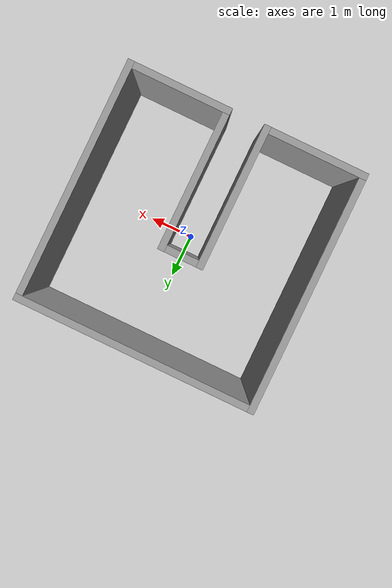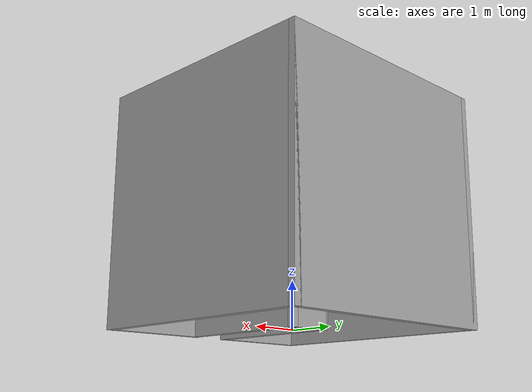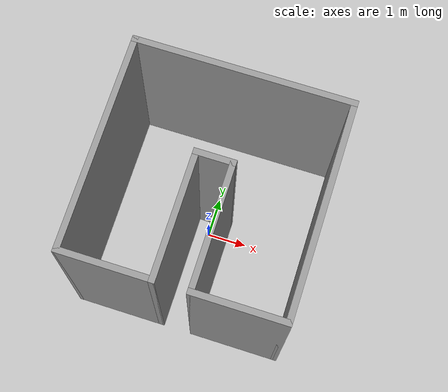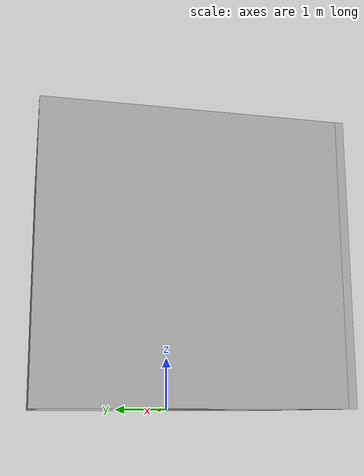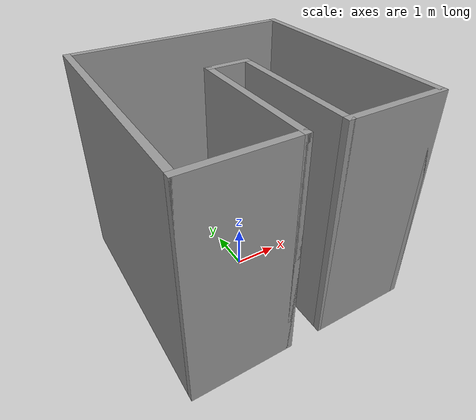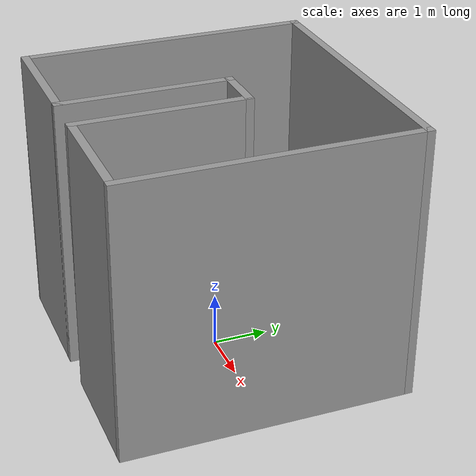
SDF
<?xml version="1.0"?>
<sdf version="1.7">
  <model name="env8">
    <link name="Wall_West_Inner">
      <collision name="Wall_West_Inner_Collision">
        <geometry>
          <box>
            <size>3.15 0.15 5</size>
          </box>
        </geometry>
        <pose>0 0 2.5 0 0 0</pose>
      </collision>
      <visual name="Wall_West_Inner_Visual">
        <geometry>
          <box>
            <size>3.15 0.15 5</size>
          </box>
        </geometry>
        <pose>0 0 2.5 0 0 0</pose>
        <material>
          <script>
            <uri>file://media/materials/scripts/gazebo.material</uri>
            <name>Gazebo/Grey</name>
          </script>
          <ambient>1 1 1 1</ambient>
        </material>
        <meta>
          <layer>0</layer>
        </meta>
      </visual>
      <pose>-0.425 -1.075 0 0 0 1.5708</pose>
    </link>
    <link name="Wall_South_West">
      <collision name="Wall_South_West_Collision">
        <geometry>
          <box>
            <size>2.3 0.15 5</size>
          </box>
        </geometry>
        <pose>0 0 2.5 0 0 0</pose>
      </collision>
      <visual name="Wall_South_West_Visual">
        <geometry>
          <box>
            <size>2.3 0.15 5</size>
          </box>
        </geometry>
        <pose>0 0 2.5 0 0 0</pose>
        <material>
          <script>
            <uri>file://media/materials/scripts/gazebo.material</uri>
            <name>Gazebo/Grey</name>
          </script>
          <ambient>1 1 1 1</ambient>
        </material>
        <meta>
          <layer>0</layer>
        </meta>
      </visual>
      <pose>-1.5 -2.575 0 0 0 0</pose>
    </link>
    <link name="Wall_West">
      <collision name="Wall_West_Collision">
        <geometry>
          <box>
            <size>5.3 0.15 5</size>
          </box>
        </geometry>
        <pose>0 0 2.5 0 0 0</pose>
      </collision>
      <visual name="Wall_West_Visual">
        <geometry>
          <box>
            <size>5.3 0.15 5</size>
          </box>
        </geometry>
        <pose>0 0 2.5 0 0 0</pose>
        <material>
          <script>
            <uri>file://media/materials/scripts/gazebo.material</uri>
            <name>Gazebo/Grey</name>
          </script>
          <ambient>1 1 1 1</ambient>
        </material>
        <meta>
          <layer>0</layer>
        </meta>
      </visual>
      <pose>-2.575 0 0 0 0 1.5708</pose>
    </link>
    <link name="Wall_North">
      <collision name="Wall_North_Collision">
        <geometry>
          <box>
            <size>5.3 0.15 5</size>
          </box>
        </geometry>
        <pose>0 0 2.5 0 0 0</pose>
      </collision>
      <visual name="Wall_North_Visual">
        <geometry>
          <box>
            <size>5.3 0.15 5</size>
          </box>
        </geometry>
        <pose>0 0 2.5 0 0 0</pose>
        <material>
          <script>
            <uri>file://media/materials/scripts/gazebo.material</uri>
            <name>Gazebo/Grey</name>
          </script>
          <ambient>1 1 1 1</ambient>
        </material>
        <meta>
          <layer>0</layer>
        </meta>
      </visual>
      <pose>0 2.575 0 0 0 0</pose>
    </link>
    <link name="Wall_East">
      <collision name="Wall_East_Collision">
        <geometry>
          <box>
            <size>5.3 0.15 5</size>
          </box>
        </geometry>
        <pose>0 0 2.5 0 0 0</pose>
      </collision>
      <visual name="Wall_East_Visual">
        <geometry>
          <box>
            <size>5.3 0.15 5</size>
          </box>
        </geometry>
        <pose>0 0 2.5 0 0 0</pose>
        <material>
          <script>
            <uri>file://media/materials/scripts/gazebo.material</uri>
            <name>Gazebo/Grey</name>
          </script>
          <ambient>1 1 1 1</ambient>
        </material>
        <meta>
          <layer>0</layer>
        </meta>
      </visual>
      <pose>2.575 0 0 0 0 1.5708</pose>
    </link>
    <link name="Wall_South_East">
      <collision name="Wall_South_East_Collision">
        <geometry>
          <box>
            <size>2.3 0.15 5</size>
          </box>
        </geometry>
        <pose>0 0 2.5 0 0 0</pose>
      </collision>
      <visual name="Wall_South_East_Visual">
        <geometry>
          <box>
            <size>2.3 0.15 5</size>
          </box>
        </geometry>
        <pose>0 0 2.5 0 0 0</pose>
        <material>
          <script>
            <uri>file://media/materials/scripts/gazebo.material</uri>
            <name>Gazebo/Grey</name>
          </script>
          <ambient>1 1 1 1</ambient>
        </material>
        <meta>
          <layer>0</layer>
        </meta>
      </visual>
      <pose>1.5 -2.575 0 0 0 0</pose>
    </link>
    <link name="Wall_East_Inner">
      <collision name="Wall_East_Inner_Collision">
        <geometry>
          <box>
            <size>3.15 0.15 5</size>
          </box>
        </geometry>
        <pose>0 0 2.5 0 0 0</pose>
      </collision>
      <visual name="Wall_East_Inner_Visual">
        <geometry>
          <box>
            <size>3.15 0.15 5</size>
          </box>
        </geometry>
        <pose>0 0 2.5 0 0 0</pose>
        <material>
          <script>
            <uri>file://media/materials/scripts/gazebo.material</uri>
            <name>Gazebo/Grey</name>
          </script>
          <ambient>1 1 1 1</ambient>
        </material>
        <meta>
          <layer>0</layer>
        </meta>
      </visual>
      <pose>0.425 -1.075 0 0 0 1.5708</pose>
    </link>
    <link name="Wall_North_Inner">
      <collision name="Wall_North_Inner_Collision">
        <geometry>
          <box>
            <size>1 0.15 5</size>
          </box>
        </geometry>
        <pose>0 0 2.5 0 0 0</pose>
      </collision>
      <visual name="Wall_North_Inner_Visual">
        <geometry>
          <box>
            <size>1 0.15 5</size>
          </box>
        </geometry>
        <pose>0 0 2.5 0 0 0</pose>
        <material>
          <script>
            <uri>file://media/materials/scripts/gazebo.material</uri>
            <name>Gazebo/Grey</name>
          </script>
          <ambient>1 1 1 1</ambient>
        </material>
        <meta>
          <layer>0</layer>
        </meta>
      </visual>
      <pose>0 0.425 0 0 0 0</pose>
    </link>
    <static>1</static>
  </model>
</sdf>
